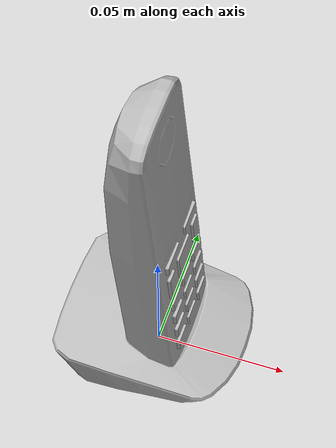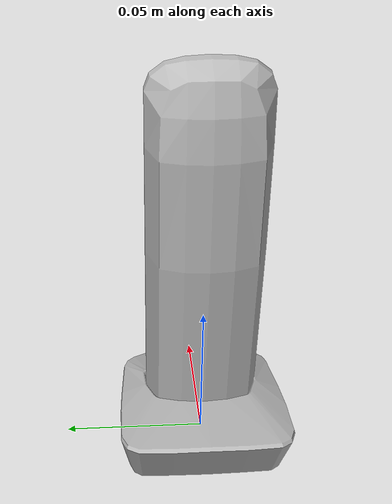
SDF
<?xml version='1.0'?>
<sdf version='1.4'>
  <model name='s__1819'>
    <pose>0 0 0 0 0 0</pose>
    <static>true</static>
    <link name='link'>
      <collision name='collision'>
        <pose>0 0 0 0 0 0</pose>
        <geometry>
          <box>
            <size>0.07 0.06 2</size>
          </box>
        </geometry>
      </collision>
      <visual name='visual'>
        <pose>0 0 0 0 0 0</pose>
        <geometry>
          <mesh><uri>model://s__1819/s__1819.dae</uri></mesh>
        </geometry>
      </visual>
    </link>
  </model>
</sdf>
